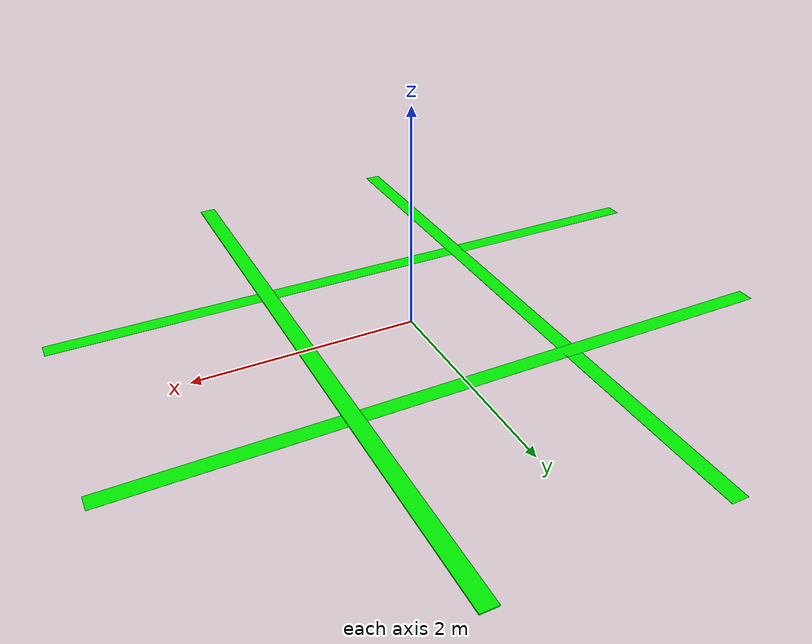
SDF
<?xml version='1.0'?>
<sdf version='1.7'>
  <model name='Tic_tac_toe_grid'>
    <pose>0 0 0 0 -0 0</pose>
    <link name='Wall_0'>
      <collision name='Wall_0_Collision'>
        <geometry>
          <box>
            <size>6 0.15 0.001</size>
          </box>
        </geometry>
        <pose>0 0 0.0005 0 -0 0</pose>
      </collision>
      <visual name='Wall_0_Visual'>
        <pose>0 0 0.0005 0 -0 0</pose>
        <geometry>
          <box>
            <size>6 0.15 0.001</size>
          </box>
        </geometry>
        <material>
          <script>
            <uri>file://media/materials/scripts/gazebo.material</uri>
            <name>Gazebo/Grey</name>
          </script>
          <ambient>0 1 0 1</ambient>
        </material>
        <meta>
          <layer>0</layer>
        </meta>
      </visual>
      <pose>-0.005 -1 0 0 -0 0</pose>
    </link>
    <link name='Wall_3'>
      <collision name='Wall_3_Collision'>
        <geometry>
          <box>
            <size>6 0.15 0.001</size>
          </box>
        </geometry>
        <pose>0 0 0.0005 0 -0 0</pose>
      </collision>
      <visual name='Wall_3_Visual'>
        <pose>0 0 0.0005 0 -0 0</pose>
        <geometry>
          <box>
            <size>6 0.15 0.001</size>
          </box>
        </geometry>
        <material>
          <script>
            <uri>file://media/materials/scripts/gazebo.material</uri>
            <name>Gazebo/Grey</name>
          </script>
          <ambient>0 1 0 1</ambient>
        </material>
        <meta>
          <layer>0</layer>
        </meta>
      </visual>
      <pose>0.005 1 0 0 -0 0</pose>
    </link>
    <link name='Wall_5'>
      <collision name='Wall_5_Collision'>
        <geometry>
          <box>
            <size>6 0.15 0.001</size>
          </box>
        </geometry>
        <pose>0 0 0.0005 0 -0 0</pose>
      </collision>
      <visual name='Wall_5_Visual'>
        <pose>0 0 0.0005 0 -0 0</pose>
        <geometry>
          <box>
            <size>6 0.15 0.001</size>
          </box>
        </geometry>
        <material>
          <script>
            <uri>file://media/materials/scripts/gazebo.material</uri>
            <name>Gazebo/Grey</name>
          </script>
          <ambient>0 1 0 1</ambient>
        </material>
        <meta>
          <layer>0</layer>
        </meta>
      </visual>
      <pose>-1 -0.005 0 0 -0 -1.5708</pose>
    </link>
    <link name='Wall_8'>
      <collision name='Wall_8_Collision'>
        <geometry>
          <box>
            <size>6 0.15 0.01</size>
          </box>
        </geometry>
        <pose>0 0 0.005 0 -0 0</pose>
      </collision>
      <visual name='Wall_8_Visual'>
        <pose>0 0 0.005 0 -0 0</pose>
        <geometry>
          <box>
            <size>6 0.15 0.01</size>
          </box>
        </geometry>
        <material>
          <script>
            <uri>file://media/materials/scripts/gazebo.material</uri>
            <name>Gazebo/Grey</name>
          </script>
          <ambient>0 1 0 1</ambient>
        </material>
        <meta>
          <layer>0</layer>
        </meta>
      </visual>
      <pose>1 0.005 0 0 -0 -1.5708</pose>
    </link>
    <static>1</static>
  </model>
</sdf>
